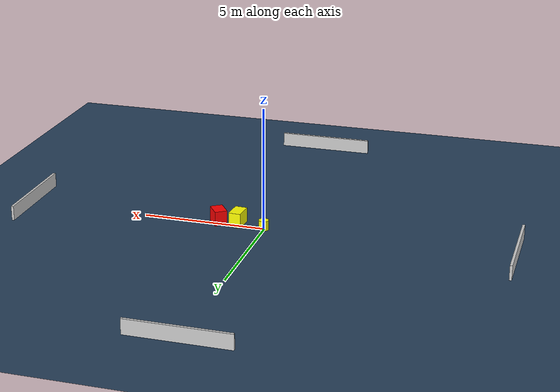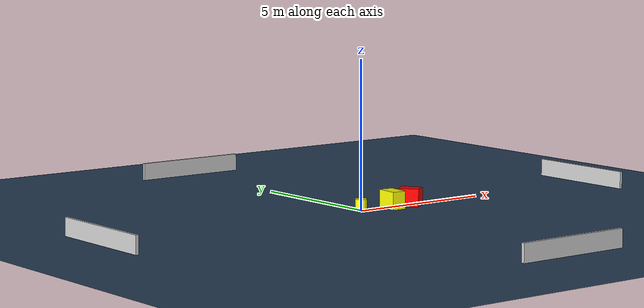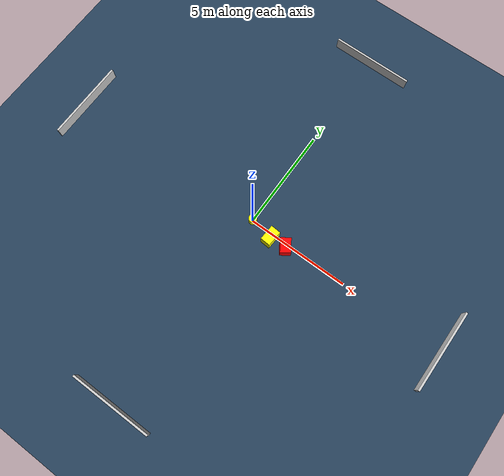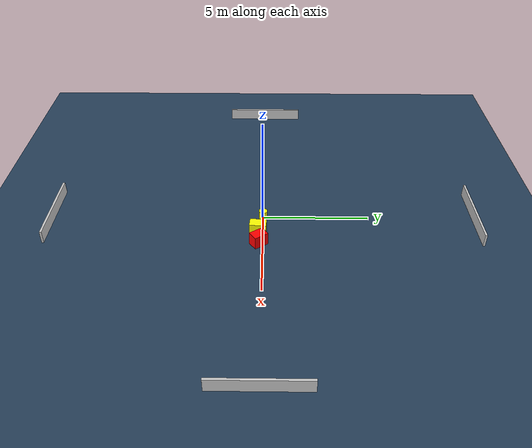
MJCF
<?xml version="1.0" ?>
<mujoco model="generated_environment">
  <option timestep="0.01" integrator="RK4" cone="elliptic"/>
  <default>
    <geom density="1"/>
  </default>
  <asset>
    <texture builtin="gradient" height="3072" name="skybox" rgb1="0.3 0.5 0.7" rgb2="0 0 0" type="skybox" width="512"/>
    <texture builtin="checker" height="300" name="groundplane" rgb1="0.2 0.3 0.4" rgb2="0.1 0.2 0.3" type="2d" width="300"/>
    <material name="groundplane" reflectance="0.2" texrepeat="5 5" texture="groundplane"/>
  </asset>
  <worldbody>
    <light dir="0 0 -1" directional="true" pos="0 0 1.5"/>
    <geom condim="3" friction="0.5 0.005 0.001" material="groundplane" name="floor" pos="0 0 0" size="0 0 0.05" type="plane"/>
    <body name="walls">
      <geom name="wall_1" condim="4" pos="-10.0 0.0 0.3" rgba="0.800000011920929 0.800000011920929 0.800000011920929 1.0" size="0.05 2.0 0.3" type="box"/>
      <geom name="wall_2" condim="4" pos="10.0 0.0 0.3" rgba="0.800000011920929 0.800000011920929 0.800000011920929 1.0" size="0.05 2.0 0.3" type="box"/>
      <geom name="wall_3" condim="4" pos="0.0 -10.0 0.3" rgba="0.800000011920929 0.800000011920929 0.800000011920929 1.0" size="2.0 0.05 0.3" type="box"/>
      <geom name="wall_4" condim="4" pos="0.0 10.0 0.3" rgba="0.800000011920929 0.800000011920929 0.800000011920929 1.0" size="2.0 0.05 0.3" type="box"/>
    </body>
    <body name="robot">
      <joint name="joint_x" type="slide" pos="0 0 0" axis="1 0 0"/>
      <joint name="joint_y" type="slide" pos="0 0 0" axis="0 1 0"/>
      <geom name="robot" type="cylinder" pos="0.0 0.0 0.2" size="0.2 0.2 0.0" mass="5.0" friction="1.0 0.005 0.0001" condim="4" rgba="1.0 1.0 0.0 1.0"/>
    </body>
    <body name="obstacle_1_movable">
      <geom name="obstacle_1_movable" condim="4" pos="1.1473163230833916 -0.21991385460981464 0.3" euler="0 0 175.7901860281283" friction="0.0 0.005 0.001" rgba="1.0 1.0 0.0 1.0" size="0.24635884135208863 0.386217883693686 0.3" type="box" mass="0.1"/>
      <joint type="free"/>
    </body>
    <body name="obstacle_2_static">
      <geom name="obstacle_2_static" condim="4" pos="1.9485925656477527 -0.1781575623101539 0.3" euler="0 0 124.65809527614545" friction="0.0 0.005 0.001" rgba="1.0 0.0 0.0 1.0" size="0.34854874705217004 0.2539435511333771 0.3" type="box"/>
    </body>
  </worldbody>
  <actuator>
    <motor name="actuator_x" joint="joint_x" gear="1" ctrlrange="-1 1"/>
    <motor name="actuator_y" joint="joint_y" gear="1" ctrlrange="-1 1"/>
  </actuator>
</mujoco>
